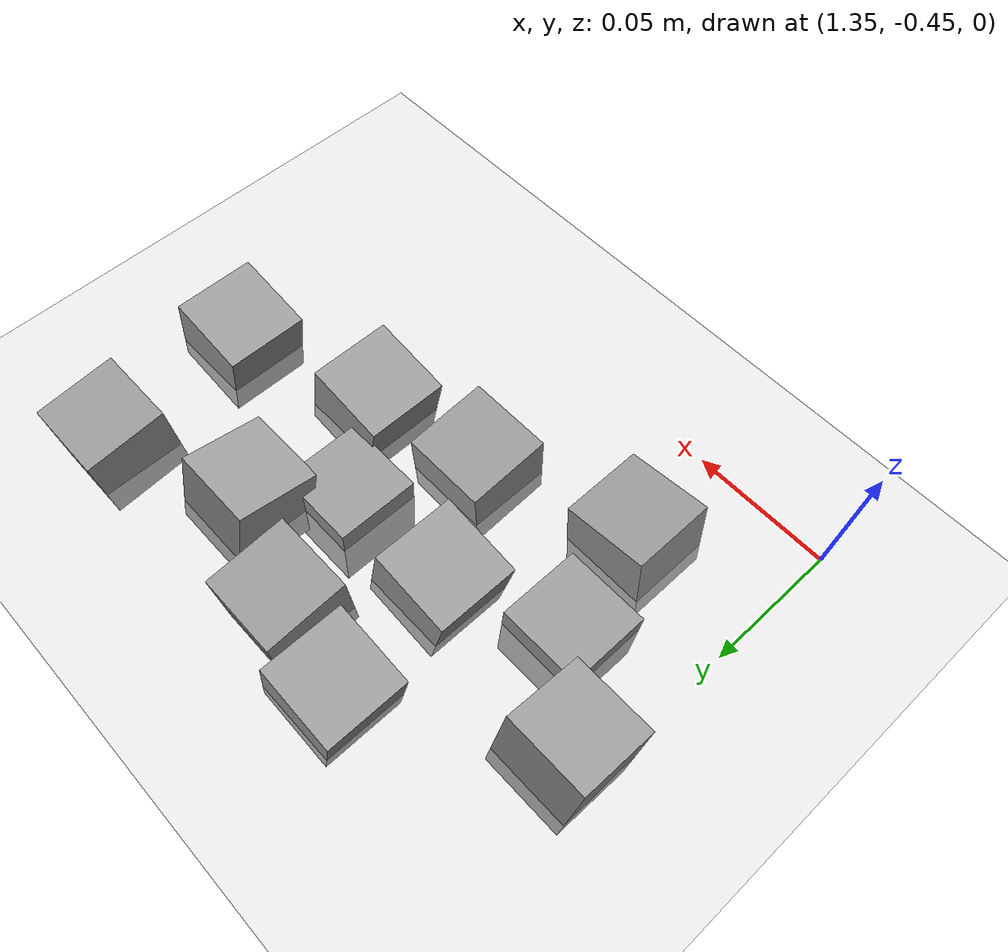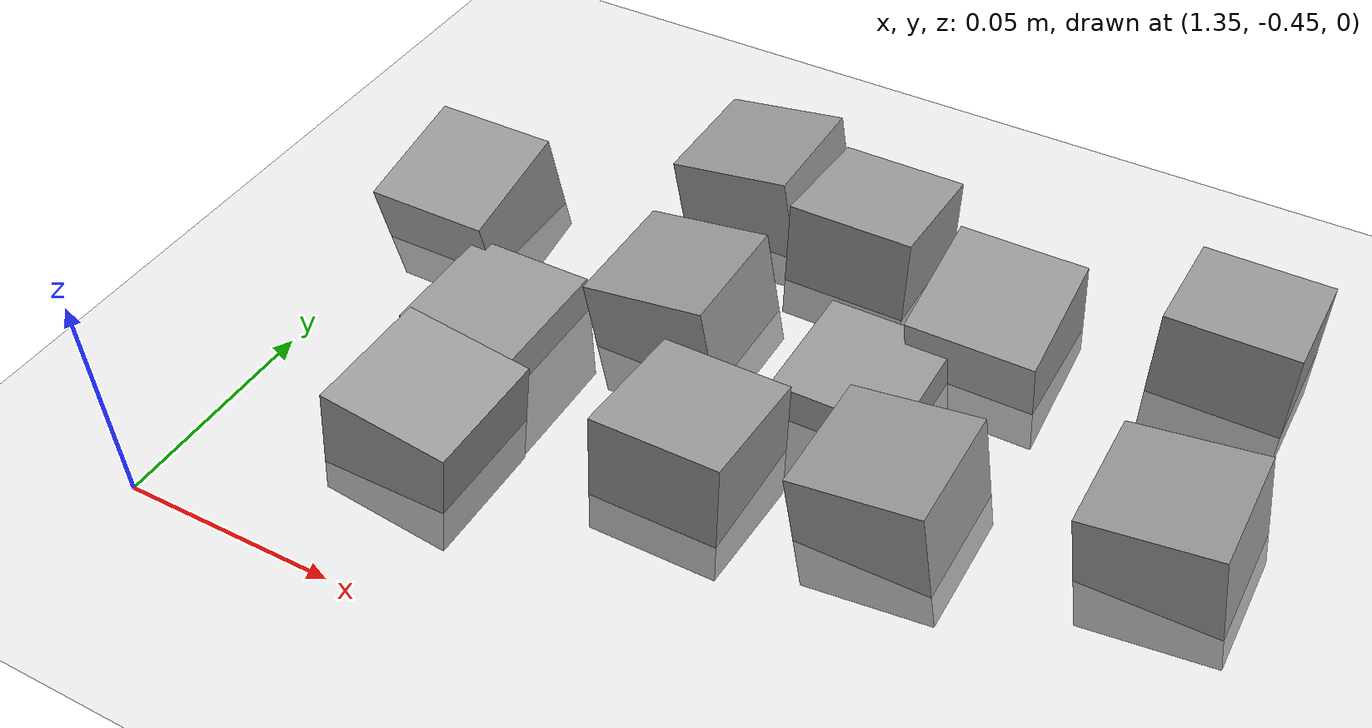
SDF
<sdf version="1.7">
 <world name="default">
  <model name="ground_plane">
   <static>1</static>
   <link name="link">
    <collision name="collision">
     <geometry><plane><normal>0 0 1</normal><size>100 100</size></plane></geometry>
     <surface><friction><ode><mu>100</mu><mu2>50</mu2></ode></friction></surface>
    </collision>
    <visual name="visual">
     <cast_shadows>0</cast_shadows>
     <geometry><plane><normal>0 0 1</normal><size>100 100</size></plane></geometry>
     <material>
      <script><uri>file://media/materials/scripts/gazebo.material</uri><name>Gazebo/Grey</name></script>
     </material>
    </visual>
   </link>
  </model>
  <model name="stone_road_1">
   <link name="link_0_clone_11">
    <inertial>
     <mass>1</mass>
     <inertia>
      <ixx>0.166667</ixx>
      <ixy>0</ixy>
      <ixz>0</ixz>
      <iyy>0.166667</iyy>
      <iyz>0</iyz>
      <izz>0.166667</izz>
     </inertia>
    </inertial>
    <pose>0.007758 0.071496 0.003778 0.2 -0 0</pose>
    <kinematic>1</kinematic>
    <visual name="visual">
     <geometry><box><size>0.03 0.03 0.03</size></box></geometry>
     <material>
      <lighting>1</lighting>
      <script><uri>file://media/materials/scripts/gazebo.material</uri><name>Gazebo/Grey</name></script>
      <shader type="pixel"><normal_map>__default__</normal_map></shader>
      <ambient>0.3 0.3 0.3 1</ambient>
      <diffuse>0.7 0.7 0.7 1</diffuse>
      <specular>0.01 0.01 0.01 1</specular>
      <emissive>0 0 0 1</emissive>
     </material>
    </visual>
    <collision name="collision">
     <geometry><box><size>0.03 0.03 0.03</size></box></geometry>
     <surface>
      <friction>
       <ode><mu>1</mu><mu2>1</mu2><fdir1>0 0 0</fdir1><slip1>0</slip1><slip2>0</slip2></ode>
       <torsional>
        <coefficient>1</coefficient>
        <patch_radius>0</patch_radius>
        <surface_radius>0</surface_radius>
        <use_patch_radius>1</use_patch_radius>
        <ode><slip>0</slip></ode>
       </torsional>
      </friction>
      <bounce><restitution_coefficient>0</restitution_coefficient><threshold>1e+06</threshold></bounce>
      <contact>
       <collide_without_contact>0</collide_without_contact>
       <collide_without_contact_bitmask>1</collide_without_contact_bitmask>
       <collide_bitmask>1</collide_bitmask>
       <ode>
        <soft_cfm>0</soft_cfm>
        <soft_erp>0.2</soft_erp>
        <kp>1e+13</kp>
        <kd>1</kd>
        <max_vel>0.01</max_vel>
        <min_depth>0</min_depth>
       </ode>
       <bullet>
        <split_impulse>1</split_impulse>
        <split_impulse_penetration_threshold>-0.01</split_impulse_penetration_threshold>
        <soft_cfm>0</soft_cfm>
        <soft_erp>0.2</soft_erp>
        <kp>1e+13</kp>
        <kd>1</kd>
       </bullet>
      </contact>
     </surface>
    </collision>
   </link>
   <link name="link_0_clone_2_clone_1">
    <inertial>
     <mass>1</mass>
     <inertia>
      <ixx>0.166667</ixx>
      <ixy>0</ixy>
      <ixz>0</ixz>
      <iyy>0.166667</iyy>
      <iyz>0</iyz>
      <izz>0.166667</izz>
     </inertia>
    </inertial>
    <pose>0.041447 0.006316 0.003778 0 0.15 0</pose>
    <kinematic>1</kinematic>
    <visual name="visual">
     <geometry><box><size>0.03 0.03 0.03</size></box></geometry>
     <material>
      <lighting>1</lighting>
      <script><uri>file://media/materials/scripts/gazebo.material</uri><name>Gazebo/Grey</name></script>
      <shader type="pixel"><normal_map>__default__</normal_map></shader>
      <ambient>0.3 0.3 0.3 1</ambient>
      <diffuse>0.7 0.7 0.7 1</diffuse>
      <specular>0.01 0.01 0.01 1</specular>
      <emissive>0 0 0 1</emissive>
     </material>
    </visual>
    <collision name="collision">
     <geometry><box><size>0.03 0.03 0.03</size></box></geometry>
     <surface>
      <friction>
       <ode><mu>1</mu><mu2>1</mu2><fdir1>0 0 0</fdir1><slip1>0</slip1><slip2>0</slip2></ode>
       <torsional>
        <coefficient>1</coefficient>
        <patch_radius>0</patch_radius>
        <surface_radius>0</surface_radius>
        <use_patch_radius>1</use_patch_radius>
        <ode><slip>0</slip></ode>
       </torsional>
      </friction>
      <bounce><restitution_coefficient>0</restitution_coefficient><threshold>1e+06</threshold></bounce>
      <contact>
       <collide_without_contact>0</collide_without_contact>
       <collide_without_contact_bitmask>1</collide_without_contact_bitmask>
       <collide_bitmask>1</collide_bitmask>
       <ode>
        <soft_cfm>0</soft_cfm>
        <soft_erp>0.2</soft_erp>
        <kp>1e+13</kp>
        <kd>1</kd>
        <max_vel>0.01</max_vel>
        <min_depth>0</min_depth>
       </ode>
       <bullet>
        <split_impulse>1</split_impulse>
        <split_impulse_penetration_threshold>-0.01</split_impulse_penetration_threshold>
        <soft_cfm>0</soft_cfm>
        <soft_erp>0.2</soft_erp>
        <kp>1e+13</kp>
        <kd>1</kd>
       </bullet>
      </contact>
     </surface>
    </collision>
   </link>
   <link name="link_0_clone_2_clone_2">
    <inertial>
     <mass>1</mass>
     <inertia>
      <ixx>0.166667</ixx>
      <ixy>0</ixy>
      <ixz>0</ixz>
      <iyy>0.166667</iyy>
      <iyz>0</iyz>
      <izz>0.166667</izz>
     </inertia>
    </inertial>
    <pose>0.066563 0.110568 0.003778 0 -0.15 0</pose>
    <kinematic>1</kinematic>
    <visual name="visual">
     <geometry><box><size>0.03 0.03 0.03</size></box></geometry>
     <material>
      <lighting>1</lighting>
      <script><uri>file://media/materials/scripts/gazebo.material</uri><name>Gazebo/Grey</name></script>
      <shader type="pixel"><normal_map>__default__</normal_map></shader>
      <ambient>0.3 0.3 0.3 1</ambient>
      <diffuse>0.7 0.7 0.7 1</diffuse>
      <specular>0.01 0.01 0.01 1</specular>
      <emissive>0 0 0 1</emissive>
     </material>
    </visual>
    <collision name="collision">
     <geometry><box><size>0.03 0.03 0.03</size></box></geometry>
     <surface>
      <friction>
       <ode><mu>1</mu><mu2>1</mu2><fdir1>0 0 0</fdir1><slip1>0</slip1><slip2>0</slip2></ode>
       <torsional>
        <coefficient>1</coefficient>
        <patch_radius>0</patch_radius>
        <surface_radius>0</surface_radius>
        <use_patch_radius>1</use_patch_radius>
        <ode><slip>0</slip></ode>
       </torsional>
      </friction>
      <bounce><restitution_coefficient>0</restitution_coefficient><threshold>1e+06</threshold></bounce>
      <contact>
       <collide_without_contact>0</collide_without_contact>
       <collide_without_contact_bitmask>1</collide_without_contact_bitmask>
       <collide_bitmask>1</collide_bitmask>
       <ode>
        <soft_cfm>0</soft_cfm>
        <soft_erp>0.2</soft_erp>
        <kp>1e+13</kp>
        <kd>1</kd>
        <max_vel>0.01</max_vel>
        <min_depth>0</min_depth>
       </ode>
       <bullet>
        <split_impulse>1</split_impulse>
        <split_impulse_penetration_threshold>-0.01</split_impulse_penetration_threshold>
        <soft_cfm>0</soft_cfm>
        <soft_erp>0.2</soft_erp>
        <kp>1e+13</kp>
        <kd>1</kd>
       </bullet>
      </contact>
     </surface>
    </collision>
   </link>
   <link name="link_0_clone_2_clone_2_clone">
    <inertial>
     <mass>1</mass>
     <inertia>
      <ixx>0.166667</ixx>
      <ixy>0</ixy>
      <ixz>0</ixz>
      <iyy>0.166667</iyy>
      <iyz>0</iyz>
      <izz>0.166667</izz>
     </inertia>
    </inertial>
    <pose>0.189059 0.051135 0.003778 0 -0.15 0</pose>
    <kinematic>1</kinematic>
    <visual name="visual">
     <geometry><box><size>0.03 0.03 0.03</size></box></geometry>
     <material>
      <lighting>1</lighting>
      <script><uri>file://media/materials/scripts/gazebo.material</uri><name>Gazebo/Grey</name></script>
      <shader type="pixel"><normal_map>__default__</normal_map></shader>
      <ambient>0.3 0.3 0.3 1</ambient>
      <diffuse>0.7 0.7 0.7 1</diffuse>
      <specular>0.01 0.01 0.01 1</specular>
      <emissive>0 0 0 1</emissive>
     </material>
    </visual>
    <collision name="collision">
     <geometry><box><size>0.03 0.03 0.03</size></box></geometry>
     <surface>
      <friction>
       <ode><mu>1</mu><mu2>1</mu2><fdir1>0 0 0</fdir1><slip1>0</slip1><slip2>0</slip2></ode>
       <torsional>
        <coefficient>1</coefficient>
        <patch_radius>0</patch_radius>
        <surface_radius>0</surface_radius>
        <use_patch_radius>1</use_patch_radius>
        <ode><slip>0</slip></ode>
       </torsional>
      </friction>
      <bounce><restitution_coefficient>0</restitution_coefficient><threshold>1e+06</threshold></bounce>
      <contact>
       <collide_without_contact>0</collide_without_contact>
       <collide_without_contact_bitmask>1</collide_without_contact_bitmask>
       <collide_bitmask>1</collide_bitmask>
       <ode>
        <soft_cfm>0</soft_cfm>
        <soft_erp>0.2</soft_erp>
        <kp>1e+13</kp>
        <kd>1</kd>
        <max_vel>0.01</max_vel>
        <min_depth>0</min_depth>
       </ode>
       <bullet>
        <split_impulse>1</split_impulse>
        <split_impulse_penetration_threshold>-0.01</split_impulse_penetration_threshold>
        <soft_cfm>0</soft_cfm>
        <soft_erp>0.2</soft_erp>
        <kp>1e+13</kp>
        <kd>1</kd>
       </bullet>
      </contact>
     </surface>
    </collision>
   </link>
   <link name="link_0_clone_2_clone_2_clone_13_clone_clone">
    <inertial>
     <mass>1</mass>
     <inertia>
      <ixx>0.166667</ixx>
      <ixy>0</ixy>
      <ixz>0</ixz>
      <iyy>0.166667</iyy>
      <iyz>0</iyz>
      <izz>0.166667</izz>
     </inertia>
    </inertial>
    <pose>0.184456 0.108712 0.003778 -0.1 0 0</pose>
    <kinematic>1</kinematic>
    <visual name="visual">
     <geometry><box><size>0.03 0.03 0.03</size></box></geometry>
     <material>
      <lighting>1</lighting>
      <script><uri>file://media/materials/scripts/gazebo.material</uri><name>Gazebo/Grey</name></script>
      <shader type="pixel"><normal_map>__default__</normal_map></shader>
      <ambient>0.3 0.3 0.3 1</ambient>
      <diffuse>0.7 0.7 0.7 1</diffuse>
      <specular>0.01 0.01 0.01 1</specular>
      <emissive>0 0 0 1</emissive>
     </material>
    </visual>
    <collision name="collision">
     <geometry><box><size>0.03 0.03 0.03</size></box></geometry>
     <surface>
      <friction>
       <ode><mu>1</mu><mu2>1</mu2><fdir1>0 0 0</fdir1><slip1>0</slip1><slip2>0</slip2></ode>
       <torsional>
        <coefficient>1</coefficient>
        <patch_radius>0</patch_radius>
        <surface_radius>0</surface_radius>
        <use_patch_radius>1</use_patch_radius>
        <ode><slip>0</slip></ode>
       </torsional>
      </friction>
      <bounce><restitution_coefficient>0</restitution_coefficient><threshold>1e+06</threshold></bounce>
      <contact>
       <collide_without_contact>0</collide_without_contact>
       <collide_without_contact_bitmask>1</collide_without_contact_bitmask>
       <collide_bitmask>1</collide_bitmask>
       <ode>
        <soft_cfm>0</soft_cfm>
        <soft_erp>0.2</soft_erp>
        <kp>1e+13</kp>
        <kd>1</kd>
        <max_vel>0.01</max_vel>
        <min_depth>0</min_depth>
       </ode>
       <bullet>
        <split_impulse>1</split_impulse>
        <split_impulse_penetration_threshold>-0.01</split_impulse_penetration_threshold>
        <soft_cfm>0</soft_cfm>
        <soft_erp>0.2</soft_erp>
        <kp>1e+13</kp>
        <kd>1</kd>
       </bullet>
      </contact>
     </surface>
    </collision>
   </link>
   <link name="link_0_clone_2_clone_2_clone_13_clone_clone_0">
    <inertial>
     <mass>1</mass>
     <inertia>
      <ixx>0.166667</ixx>
      <ixy>0</ixy>
      <ixz>0</ixz>
      <iyy>0.166667</iyy>
      <iyz>0</iyz>
      <izz>0.166667</izz>
     </inertia>
    </inertial>
    <pose>0.094072 0.02539 0.003778 -0.1 0 0</pose>
    <kinematic>1</kinematic>
    <visual name="visual">
     <geometry><box><size>0.03 0.03 0.03</size></box></geometry>
     <material>
      <lighting>1</lighting>
      <script><uri>file://media/materials/scripts/gazebo.material</uri><name>Gazebo/Grey</name></script>
      <shader type="pixel"><normal_map>__default__</normal_map></shader>
      <ambient>0.3 0.3 0.3 1</ambient>
      <diffuse>0.7 0.7 0.7 1</diffuse>
      <specular>0.01 0.01 0.01 1</specular>
      <emissive>0 0 0 1</emissive>
     </material>
    </visual>
    <collision name="collision">
     <geometry><box><size>0.03 0.03 0.03</size></box></geometry>
     <surface>
      <friction>
       <ode><mu>1</mu><mu2>1</mu2><fdir1>0 0 0</fdir1><slip1>0</slip1><slip2>0</slip2></ode>
       <torsional>
        <coefficient>1</coefficient>
        <patch_radius>0</patch_radius>
        <surface_radius>0</surface_radius>
        <use_patch_radius>1</use_patch_radius>
        <ode><slip>0</slip></ode>
       </torsional>
      </friction>
      <bounce><restitution_coefficient>0</restitution_coefficient><threshold>1e+06</threshold></bounce>
      <contact>
       <collide_without_contact>0</collide_without_contact>
       <collide_without_contact_bitmask>1</collide_without_contact_bitmask>
       <collide_bitmask>1</collide_bitmask>
       <ode>
        <soft_cfm>0</soft_cfm>
        <soft_erp>0.2</soft_erp>
        <kp>1e+13</kp>
        <kd>1</kd>
        <max_vel>0.01</max_vel>
        <min_depth>0</min_depth>
       </ode>
       <bullet>
        <split_impulse>1</split_impulse>
        <split_impulse_penetration_threshold>-0.01</split_impulse_penetration_threshold>
        <soft_cfm>0</soft_cfm>
        <soft_erp>0.2</soft_erp>
        <kp>1e+13</kp>
        <kd>1</kd>
       </bullet>
      </contact>
     </surface>
    </collision>
   </link>
   <link name="link_0_clone_2_clone_2_clone_13_clone_clone_1">
    <inertial>
     <mass>1</mass>
     <inertia>
      <ixx>0.166667</ixx>
      <ixy>0</ixy>
      <ixz>0</ixz>
      <iyy>0.166667</iyy>
      <iyz>0</iyz>
      <izz>0.166667</izz>
     </inertia>
    </inertial>
    <pose>0.098415 0.103772 0.003778 -0.1 0 0</pose>
    <kinematic>1</kinematic>
    <visual name="visual">
     <geometry><box><size>0.03 0.03 0.03</size></box></geometry>
     <material>
      <lighting>1</lighting>
      <script><uri>file://media/materials/scripts/gazebo.material</uri><name>Gazebo/Grey</name></script>
      <shader type="pixel"><normal_map>__default__</normal_map></shader>
      <ambient>0.3 0.3 0.3 1</ambient>
      <diffuse>0.7 0.7 0.7 1</diffuse>
      <specular>0.01 0.01 0.01 1</specular>
      <emissive>0 0 0 1</emissive>
     </material>
    </visual>
    <collision name="collision">
     <geometry><box><size>0.03 0.03 0.03</size></box></geometry>
     <surface>
      <friction>
       <ode><mu>1</mu><mu2>1</mu2><fdir1>0 0 0</fdir1><slip1>0</slip1><slip2>0</slip2></ode>
       <torsional>
        <coefficient>1</coefficient>
        <patch_radius>0</patch_radius>
        <surface_radius>0</surface_radius>
        <use_patch_radius>1</use_patch_radius>
        <ode><slip>0</slip></ode>
       </torsional>
      </friction>
      <bounce><restitution_coefficient>0</restitution_coefficient><threshold>1e+06</threshold></bounce>
      <contact>
       <collide_without_contact>0</collide_without_contact>
       <collide_without_contact_bitmask>1</collide_without_contact_bitmask>
       <collide_bitmask>1</collide_bitmask>
       <ode>
        <soft_cfm>0</soft_cfm>
        <soft_erp>0.2</soft_erp>
        <kp>1e+13</kp>
        <kd>1</kd>
        <max_vel>0.01</max_vel>
        <min_depth>0</min_depth>
       </ode>
       <bullet>
        <split_impulse>1</split_impulse>
        <split_impulse_penetration_threshold>-0.01</split_impulse_penetration_threshold>
        <soft_cfm>0</soft_cfm>
        <soft_erp>0.2</soft_erp>
        <kp>1e+13</kp>
        <kd>1</kd>
       </bullet>
      </contact>
     </surface>
    </collision>
   </link>
   <link name="link_0_clone_2_clone_2_clone_13_clone_clone_16_clone_1">
    <inertial>
     <mass>1</mass>
     <inertia>
      <ixx>0.166667</ixx>
      <ixy>0</ixy>
      <ixz>0</ixz>
      <iyy>0.166667</iyy>
      <iyz>0</iyz>
      <izz>0.166667</izz>
     </inertia>
    </inertial>
    <pose>0.033787 0.042837 -0.006222 0 -0 0</pose>
    <kinematic>1</kinematic>
    <visual name="visual">
     <geometry><box><size>0.03 0.03 0.03</size></box></geometry>
     <material>
      <lighting>1</lighting>
      <script><uri>file://media/materials/scripts/gazebo.material</uri><name>Gazebo/Grey</name></script>
      <shader type="pixel"><normal_map>__default__</normal_map></shader>
      <ambient>0.3 0.3 0.3 1</ambient>
      <diffuse>0.7 0.7 0.7 1</diffuse>
      <specular>0.01 0.01 0.01 1</specular>
      <emissive>0 0 0 1</emissive>
     </material>
    </visual>
    <collision name="collision">
     <geometry><box><size>0.03 0.03 0.03</size></box></geometry>
     <surface>
      <friction>
       <ode><mu>1</mu><mu2>1</mu2><fdir1>0 0 0</fdir1><slip1>0</slip1><slip2>0</slip2></ode>
       <torsional>
        <coefficient>1</coefficient>
        <patch_radius>0</patch_radius>
        <surface_radius>0</surface_radius>
        <use_patch_radius>1</use_patch_radius>
        <ode><slip>0</slip></ode>
       </torsional>
      </friction>
      <bounce><restitution_coefficient>0</restitution_coefficient><threshold>1e+06</threshold></bounce>
      <contact>
       <collide_without_contact>0</collide_without_contact>
       <collide_without_contact_bitmask>1</collide_without_contact_bitmask>
       <collide_bitmask>1</collide_bitmask>
       <ode>
        <soft_cfm>0</soft_cfm>
        <soft_erp>0.2</soft_erp>
        <kp>1e+13</kp>
        <kd>1</kd>
        <max_vel>0.01</max_vel>
        <min_depth>0</min_depth>
       </ode>
       <bullet>
        <split_impulse>1</split_impulse>
        <split_impulse_penetration_threshold>-0.01</split_impulse_penetration_threshold>
        <soft_cfm>0</soft_cfm>
        <soft_erp>0.2</soft_erp>
        <kp>1e+13</kp>
        <kd>1</kd>
       </bullet>
      </contact>
     </surface>
    </collision>
   </link>
   <link name="link_0_clone_2_clone_2_clone_13_clone_clone_16_clone_20">
    <inertial>
     <mass>1</mass>
     <inertia>
      <ixx>0.166667</ixx>
      <ixy>0</ixy>
      <ixz>0</ixz>
      <iyy>0.166667</iyy>
      <iyz>0</iyz>
      <izz>0.166667</izz>
     </inertia>
    </inertial>
    <pose>0.115763 0.063063 -0.006222 0 -0 0</pose>
    <kinematic>1</kinematic>
    <visual name="visual">
     <geometry><box><size>0.03 0.03 0.03</size></box></geometry>
     <material>
      <lighting>1</lighting>
      <script><uri>file://media/materials/scripts/gazebo.material</uri><name>Gazebo/Grey</name></script>
      <shader type="pixel"><normal_map>__default__</normal_map></shader>
      <ambient>0.3 0.3 0.3 1</ambient>
      <diffuse>0.7 0.7 0.7 1</diffuse>
      <specular>0.01 0.01 0.01 1</specular>
      <emissive>0 0 0 1</emissive>
     </material>
    </visual>
    <collision name="collision">
     <geometry><box><size>0.03 0.03 0.03</size></box></geometry>
     <surface>
      <friction>
       <ode><mu>1</mu><mu2>1</mu2><fdir1>0 0 0</fdir1><slip1>0</slip1><slip2>0</slip2></ode>
       <torsional>
        <coefficient>1</coefficient>
        <patch_radius>0</patch_radius>
        <surface_radius>0</surface_radius>
        <use_patch_radius>1</use_patch_radius>
        <ode><slip>0</slip></ode>
       </torsional>
      </friction>
      <bounce><restitution_coefficient>0</restitution_coefficient><threshold>1e+06</threshold></bounce>
      <contact>
       <collide_without_contact>0</collide_without_contact>
       <collide_without_contact_bitmask>1</collide_without_contact_bitmask>
       <collide_bitmask>1</collide_bitmask>
       <ode>
        <soft_cfm>0</soft_cfm>
        <soft_erp>0.2</soft_erp>
        <kp>1e+13</kp>
        <kd>1</kd>
        <max_vel>0.01</max_vel>
        <min_depth>0</min_depth>
       </ode>
       <bullet>
        <split_impulse>1</split_impulse>
        <split_impulse_penetration_threshold>-0.01</split_impulse_penetration_threshold>
        <soft_cfm>0</soft_cfm>
        <soft_erp>0.2</soft_erp>
        <kp>1e+13</kp>
        <kd>1</kd>
       </bullet>
      </contact>
     </surface>
    </collision>
   </link>
   <link name="link_0_clone_2_clone_2_clone_6">
    <inertial>
     <mass>1</mass>
     <inertia>
      <ixx>0.166667</ixx>
      <ixy>0</ixy>
      <ixz>0</ixz>
      <iyy>0.166667</iyy>
      <iyz>0</iyz>
      <izz>0.166667</izz>
     </inertia>
    </inertial>
    <pose>0.136141 0.034017 0.003778 0 -0.15 0</pose>
    <kinematic>1</kinematic>
    <visual name="visual">
     <geometry><box><size>0.03 0.03 0.03</size></box></geometry>
     <material>
      <lighting>1</lighting>
      <script><uri>file://media/materials/scripts/gazebo.material</uri><name>Gazebo/Grey</name></script>
      <shader type="pixel"><normal_map>__default__</normal_map></shader>
      <ambient>0.3 0.3 0.3 1</ambient>
      <diffuse>0.7 0.7 0.7 1</diffuse>
      <specular>0.01 0.01 0.01 1</specular>
      <emissive>0 0 0 1</emissive>
     </material>
    </visual>
    <collision name="collision">
     <geometry><box><size>0.03 0.03 0.03</size></box></geometry>
     <surface>
      <friction>
       <ode><mu>1</mu><mu2>1</mu2><fdir1>0 0 0</fdir1><slip1>0</slip1><slip2>0</slip2></ode>
       <torsional>
        <coefficient>1</coefficient>
        <patch_radius>0</patch_radius>
        <surface_radius>0</surface_radius>
        <use_patch_radius>1</use_patch_radius>
        <ode><slip>0</slip></ode>
       </torsional>
      </friction>
      <bounce><restitution_coefficient>0</restitution_coefficient><threshold>1e+06</threshold></bounce>
      <contact>
       <collide_without_contact>0</collide_without_contact>
       <collide_without_contact_bitmask>1</collide_without_contact_bitmask>
       <collide_bitmask>1</collide_bitmask>
       <ode>
        <soft_cfm>0</soft_cfm>
        <soft_erp>0.2</soft_erp>
        <kp>1e+13</kp>
        <kd>1</kd>
        <max_vel>0.01</max_vel>
        <min_depth>0</min_depth>
       </ode>
       <bullet>
        <split_impulse>1</split_impulse>
        <split_impulse_penetration_threshold>-0.01</split_impulse_penetration_threshold>
        <soft_cfm>0</soft_cfm>
        <soft_erp>0.2</soft_erp>
        <kp>1e+13</kp>
        <kd>1</kd>
       </bullet>
      </contact>
     </surface>
    </collision>
   </link>
   <link name="link_0_clone_2_clone_2_clone_9">
    <inertial>
     <mass>1</mass>
     <inertia>
      <ixx>0.166667</ixx>
      <ixy>0</ixy>
      <ixz>0</ixz>
      <iyy>0.166667</iyy>
      <iyz>0</iyz>
      <izz>0.166667</izz>
     </inertia>
    </inertial>
    <pose>0.071478 0.063212 0.003778 0 -0.15 0</pose>
    <kinematic>1</kinematic>
    <visual name="visual">
     <geometry><box><size>0.03 0.03 0.03</size></box></geometry>
     <material>
      <lighting>1</lighting>
      <script><uri>file://media/materials/scripts/gazebo.material</uri><name>Gazebo/Grey</name></script>
      <shader type="pixel"><normal_map>__default__</normal_map></shader>
      <ambient>0.3 0.3 0.3 1</ambient>
      <diffuse>0.7 0.7 0.7 1</diffuse>
      <specular>0.01 0.01 0.01 1</specular>
      <emissive>0 0 0 1</emissive>
     </material>
    </visual>
    <collision name="collision">
     <geometry><box><size>0.03 0.03 0.03</size></box></geometry>
     <surface>
      <friction>
       <ode><mu>1</mu><mu2>1</mu2><fdir1>0 0 0</fdir1><slip1>0</slip1><slip2>0</slip2></ode>
       <torsional>
        <coefficient>1</coefficient>
        <patch_radius>0</patch_radius>
        <surface_radius>0</surface_radius>
        <use_patch_radius>1</use_patch_radius>
        <ode><slip>0</slip></ode>
       </torsional>
      </friction>
      <bounce><restitution_coefficient>0</restitution_coefficient><threshold>1e+06</threshold></bounce>
      <contact>
       <collide_without_contact>0</collide_without_contact>
       <collide_without_contact_bitmask>1</collide_without_contact_bitmask>
       <collide_bitmask>1</collide_bitmask>
       <ode>
        <soft_cfm>0</soft_cfm>
        <soft_erp>0.2</soft_erp>
        <kp>1e+13</kp>
        <kd>1</kd>
        <max_vel>0.01</max_vel>
        <min_depth>0</min_depth>
       </ode>
       <bullet>
        <split_impulse>1</split_impulse>
        <split_impulse_penetration_threshold>-0.01</split_impulse_penetration_threshold>
        <soft_cfm>0</soft_cfm>
        <soft_erp>0.2</soft_erp>
        <kp>1e+13</kp>
        <kd>1</kd>
       </bullet>
      </contact>
     </surface>
    </collision>
   </link>
   <link name="link_0_clone_8">
    <inertial>
     <mass>1</mass>
     <inertia>
      <ixx>0.166667</ixx>
      <ixy>0</ixy>
      <ixz>0</ixz>
      <iyy>0.166667</iyy>
      <iyz>0</iyz>
      <izz>0.166667</izz>
     </inertia>
    </inertial>
    <pose>0.135749 0.089175 0.003778 0.2 -0 0</pose>
    <kinematic>1</kinematic>
    <visual name="visual">
     <geometry><box><size>0.03 0.03 0.03</size></box></geometry>
     <material>
      <lighting>1</lighting>
      <script><uri>file://media/materials/scripts/gazebo.material</uri><name>Gazebo/Grey</name></script>
      <shader type="pixel"><normal_map>__default__</normal_map></shader>
      <ambient>0.3 0.3 0.3 1</ambient>
      <diffuse>0.7 0.7 0.7 1</diffuse>
      <specular>0.01 0.01 0.01 1</specular>
      <emissive>0 0 0 1</emissive>
     </material>
    </visual>
    <collision name="collision">
     <geometry><box><size>0.03 0.03 0.03</size></box></geometry>
     <surface>
      <friction>
       <ode><mu>1</mu><mu2>1</mu2><fdir1>0 0 0</fdir1><slip1>0</slip1><slip2>0</slip2></ode>
       <torsional>
        <coefficient>1</coefficient>
        <patch_radius>0</patch_radius>
        <surface_radius>0</surface_radius>
        <use_patch_radius>1</use_patch_radius>
        <ode><slip>0</slip></ode>
       </torsional>
      </friction>
      <bounce><restitution_coefficient>0</restitution_coefficient><threshold>1e+06</threshold></bounce>
      <contact>
       <collide_without_contact>0</collide_without_contact>
       <collide_without_contact_bitmask>1</collide_without_contact_bitmask>
       <collide_bitmask>1</collide_bitmask>
       <ode>
        <soft_cfm>0</soft_cfm>
        <soft_erp>0.2</soft_erp>
        <kp>1e+13</kp>
        <kd>1</kd>
        <max_vel>0.01</max_vel>
        <min_depth>0</min_depth>
       </ode>
       <bullet>
        <split_impulse>1</split_impulse>
        <split_impulse_penetration_threshold>-0.01</split_impulse_penetration_threshold>
        <soft_cfm>0</soft_cfm>
        <soft_erp>0.2</soft_erp>
        <kp>1e+13</kp>
        <kd>1</kd>
       </bullet>
      </contact>
     </surface>
    </collision>
   </link>
   <static>0</static>
   <pose>1.35395 -0.41641 -0 0 -0 0</pose>
  </model>
 </world>
</sdf>
